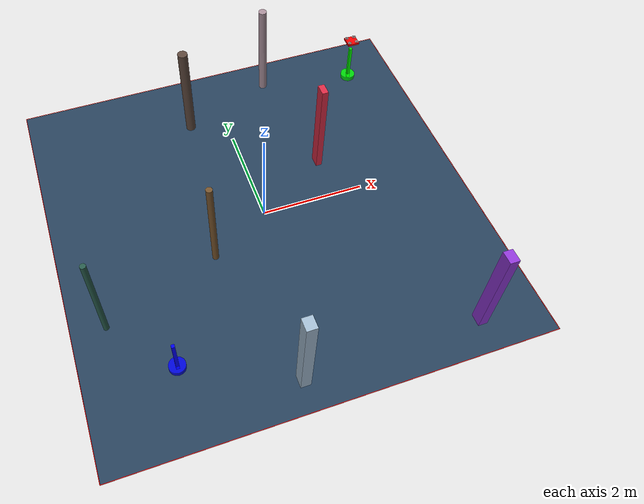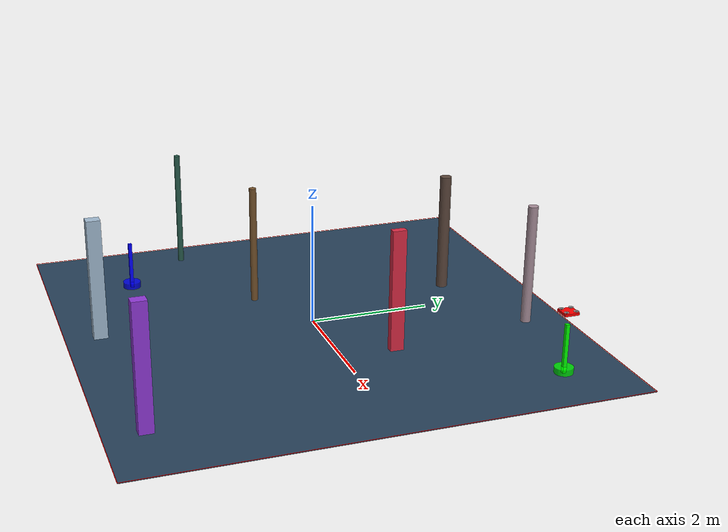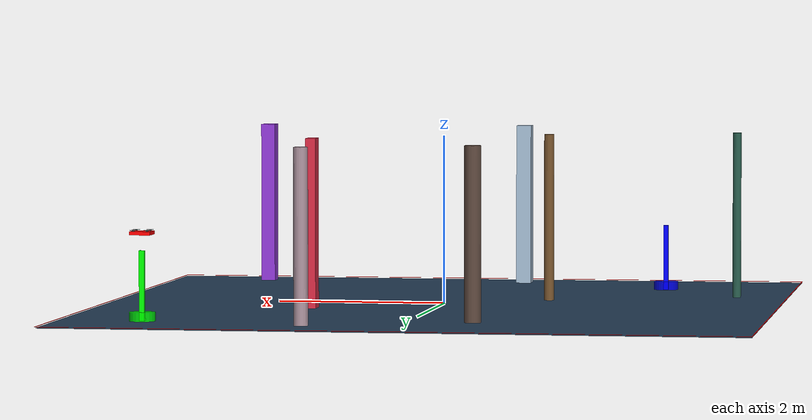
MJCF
<?xml version='1.0' encoding='utf-8'?>
<mujoco model="complex_uav_env">
  <compiler angle="degree" coordinate="local" inertiafromgeom="true" />
  <option integrator="RK4" timestep="0.01" />

  <visual>
    <headlight diffuse="0.6 0.6 0.6" ambient="0.3 0.3 0.3" />
    <rgba haze="0.15 0.25 0.35 1" />
    <global offwidth="2560" offheight="1440" />
  </visual>

  <asset>
    <texture type="skybox" builtin="gradient" rgb1="0.3 0.5 0.7" rgb2="0 0 0" width="512" height="3072" />
    <texture name="grid" type="2d" builtin="checker" rgb1="0.1 0.2 0.3" rgb2="0.2 0.3 0.4" width="512" height="512" />
    <material name="grid" texture="grid" texrepeat="1 1" />
  </asset>

  <worldbody>

    <geom name="ground" type="plane" size="4.0 4.0 0.1" material="grid" />
    <light name="light1" pos="0 0 4" dir="0 0 -1" diffuse="1 1 1" />

    <geom name="start_marker" type="cylinder" size="0.15 0.05" pos="3.0 3.0 0.05" rgba="0 1 0 0.8" />
    <geom name="start_pole" type="box" size="0.03 0.03 0.4" pos="3.0 3.0 0.4" rgba="0 1 0 1" />

    <geom name="goal_marker" type="cylinder" size="0.15 0.05" pos="-2.4038872065859946 -2.54100987837404 0.05" rgba="0 0 1 0.8" />
    <geom name="goal_pole" type="box" size="0.03 0.03 0.4" pos="-2.4038872065859946 -2.54100987837404 0.4" rgba="0 0 1 1" />

    <body name="chassis" pos="3.0 3.0 1.0">
      <joint type="free" name="root" />
      <geom type="box" size="0.12 0.12 0.02" rgba="1.0 0.0 0.0 1.0" mass="0.8" />

      <geom type="box" size="0.08 0.01 0.005" pos="0 0 0.01" rgba="0.3 0.3 0.3 1" />
      <geom type="box" size="0.01 0.08 0.005" pos="0 0 0.01" rgba="0.3 0.3 0.3 1" />

      <geom type="cylinder" size="0.015 0.02" pos="0.08 0.08 0.015" rgba="0.2 0.2 0.2 1" />
      <geom type="cylinder" size="0.015 0.02" pos="-0.08 0.08 0.015" rgba="0.2 0.2 0.2 1" />
      <geom type="cylinder" size="0.015 0.02" pos="0.08 -0.08 0.015" rgba="0.2 0.2 0.2 1" />
      <geom type="cylinder" size="0.015 0.02" pos="-0.08 -0.08 0.015" rgba="0.2 0.2 0.2 1" />

      <geom type="cylinder" size="0.04 0.002" pos="0.08 0.08 0.035" rgba="0.7 0.7 0.7 0.8" />
      <geom type="cylinder" size="0.04 0.002" pos="-0.08 0.08 0.035" rgba="0.7 0.7 0.7 0.8" />
      <geom type="cylinder" size="0.04 0.002" pos="0.08 -0.08 0.035" rgba="0.7 0.7 0.7 0.8" />
      <geom type="cylinder" size="0.04 0.002" pos="-0.08 -0.08 0.035" rgba="0.7 0.7 0.7 0.8" />

      <site name="motor1" pos="0.08 0.08 0" size="0.01" />
      <site name="motor2" pos="-0.08 0.08 0" size="0.01" />
      <site name="motor3" pos="0.08 -0.08 0" size="0.01" />
      <site name="motor4" pos="-0.08 -0.08 0" size="0.01" />
    </body>
    <geom name="test_obs_0" type="cylinder" size="0.0959655474372721 1.0" pos="-0.7346473170347724 2.639504707607277 1.0" rgba="0.35821327439667294 0.27563026935191703 0.23447753339864771 1.0" />
    <geom name="test_obs_1" type="box" size="0.05999205239323625 0.11183786620829343 1.0" pos="1.434981271568208 0.8950350497664392 1.0" rgba="0.8474673060006824 0.1662386337715457 0.2690590219467944 1.0" />
    <geom name="test_obs_2" type="box" size="0.08596840417099576 0.11360396208083937 1.0" pos="2.786609337692778 -3.3775643348855335 1.0" rgba="0.560453865849554 0.21827972027904688 0.8381948468314806 1.0" />
    <geom name="test_obs_3" type="cylinder" size="0.08223427067033895 1.0" pos="1.1066477474850442 3.334295992224998 1.0" rgba="0.6553401759750013 0.5568747790553484 0.5996947602930868 1.0" />
    <geom name="test_obs_4" type="cylinder" size="0.051013018045372414 1.0" pos="-3.3777094126962113 -1.4348926945357878 1.0" rgba="0.15625809273902497 0.3562255506029268 0.29546326469896506 1.0" />
    <geom name="test_obs_5" type="cylinder" size="0.05993143506935688 1.0" pos="-1.178532861096606 -0.6576128495531521 1.0" rgba="0.460664234980677 0.3242649452449776 0.17267661799997852 1.0" />
    <geom name="test_obs_6" type="box" size="0.092562185296861 0.11390084340862264 1.0" pos="-0.5070251575371727 -3.4322838172303602 1.0" rgba="0.6335408098740017 0.7295290183751552 0.8147365389533765 1.0" />
  <geom name="boundary_north" type="box" size="4.0 0.005 0.002" pos="0 4.0 0.002" rgba="1.0 0.0 0.0 1.0" /><geom name="boundary_south" type="box" size="4.0 0.005 0.002" pos="0 -4.0 0.002" rgba="1.0 0.0 0.0 1.0" /><geom name="boundary_east" type="box" size="0.005 4.0 0.002" pos="4.0 0 0.002" rgba="1.0 0.0 0.0 1.0" /><geom name="boundary_west" type="box" size="0.005 4.0 0.002" pos="-4.0 0 0.002" rgba="1.0 0.0 0.0 1.0" /></worldbody>

  <actuator>
    <motor name="m1" gear="0 0 1 0 0 0" site="motor1" />
    <motor name="m2" gear="0 0 1 0 0 0" site="motor2" />
    <motor name="m3" gear="0 0 1 0 0 0" site="motor3" />
    <motor name="m4" gear="0 0 1 0 0 0" site="motor4" />
  </actuator>
</mujoco>
